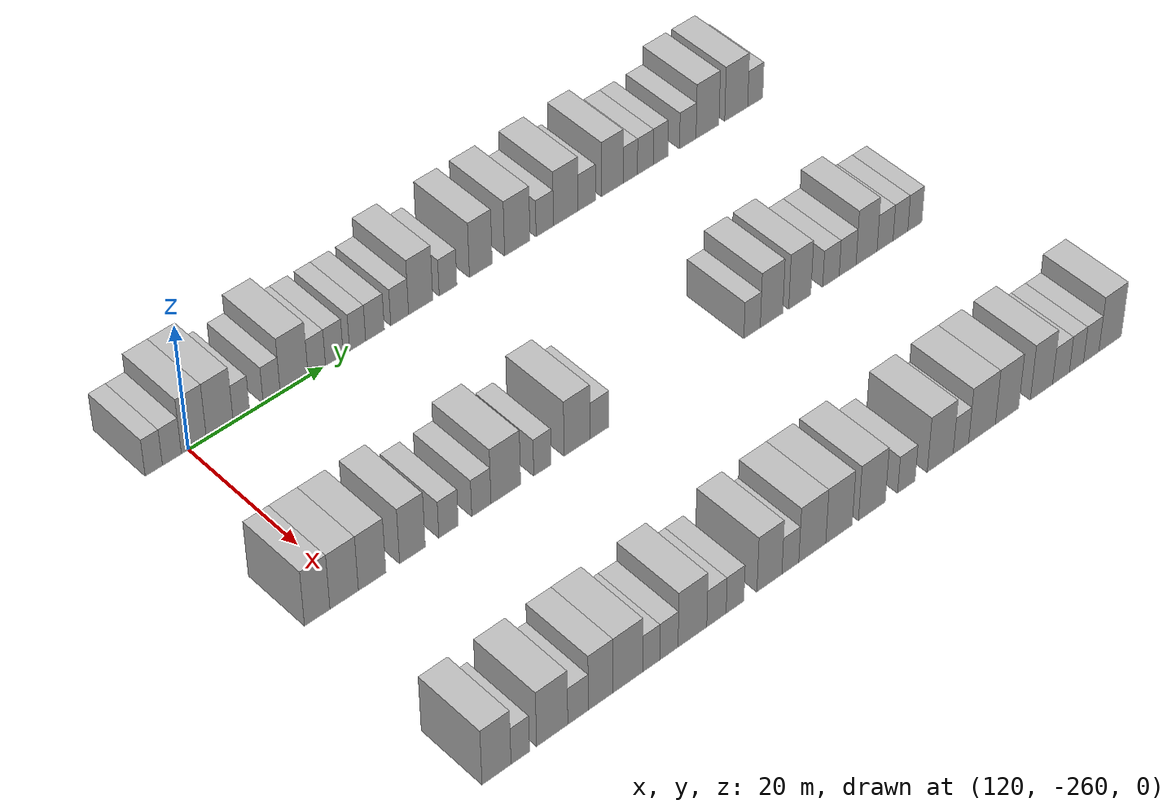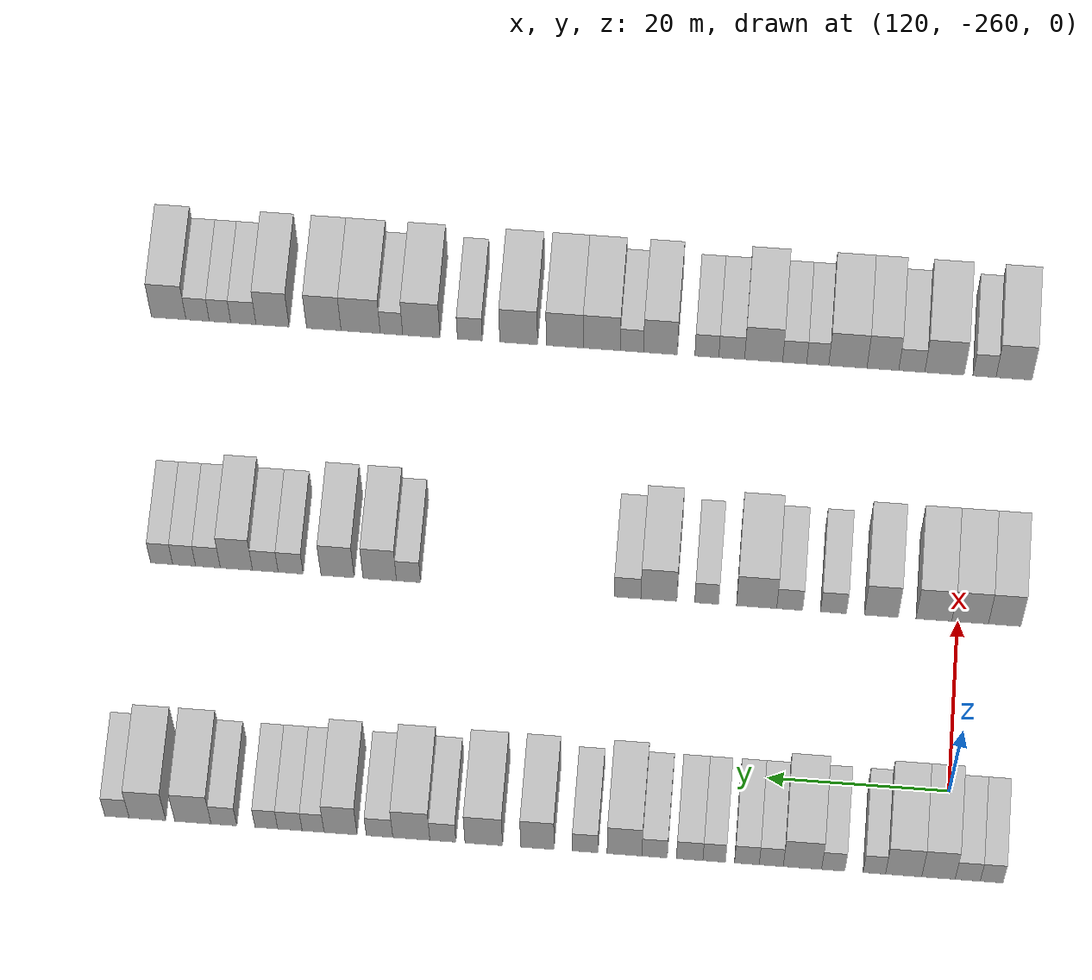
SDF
<sdf version="1.6">
 <world name="default">
  <model name="building_751">
   <static>1</static>
   <pose>115.0000 -265.0925 0 0.000000 0.000000 0.000000</pose>
   <link name="link">
    <pose>0 0 3.00 0 0 0</pose>
    <collision name="collision"><geometry><box><size>10.0000 2.4877 6.0000</size></box></geometry></collision>
    <visual name="visual">
     <cast_shadows>0</cast_shadows>
     <geometry><box><size>10.0000 2.4877 6.0000</size></box></geometry>
     <material>
      <script>
       <uri>model://HANNAS_wall/materials/scripts</uri>
       <uri>model://HANNAS_wall/materials/textures</uri>
       <name>vrc/HANNAS_wall</name>
      </script>
     </material>
    </visual>
   </link>
  </model>
  <model name="building_752">
   <static>1</static>
   <pose>115.0000 -262.4783 0 0.000000 0.000000 0.000000</pose>
   <link name="link">
    <pose>0 0 3.00 0 0 0</pose>
    <collision name="collision"><geometry><box><size>10.0000 2.7408 6.0000</size></box></geometry></collision>
    <visual name="visual">
     <cast_shadows>0</cast_shadows>
     <geometry><box><size>10.0000 2.7408 6.0000</size></box></geometry>
     <material>
      <script>
       <uri>model://HANNAS_wall/materials/scripts</uri>
       <uri>model://HANNAS_wall/materials/textures</uri>
       <name>vrc/HANNAS_wall</name>
      </script>
     </material>
    </visual>
   </link>
  </model>
  <model name="building_753">
   <static>1</static>
   <pose>115.0000 -259.2840 0 0.000000 0.000000 0.000000</pose>
   <link name="link">
    <pose>0 0 4.50 0 0 0</pose>
    <collision name="collision"><geometry><box><size>10.0000 3.6479 9.0000</size></box></geometry></collision>
    <visual name="visual">
     <cast_shadows>0</cast_shadows>
     <geometry><box><size>10.0000 3.6479 9.0000</size></box></geometry>
     <material>
      <script>
       <uri>model://HANNAS_wall/materials/scripts</uri>
       <uri>model://HANNAS_wall/materials/textures</uri>
       <name>vrc/HANNAS_wall</name>
      </script>
     </material>
    </visual>
   </link>
  </model>
  <model name="building_754">
   <static>1</static>
   <pose>115.0000 -255.4858 0 0.000000 0.000000 0.000000</pose>
   <link name="link">
    <pose>0 0 4.50 0 0 0</pose>
    <collision name="collision"><geometry><box><size>10.0000 3.9485 9.0000</size></box></geometry></collision>
    <visual name="visual">
     <cast_shadows>0</cast_shadows>
     <geometry><box><size>10.0000 3.9485 9.0000</size></box></geometry>
     <material>
      <script>
       <uri>model://HANNAS_wall/materials/scripts</uri>
       <uri>model://HANNAS_wall/materials/textures</uri>
       <name>vrc/HANNAS_wall</name>
      </script>
     </material>
    </visual>
   </link>
  </model>
  <model name="building_755">
   <static>1</static>
   <pose>115.0000 -252.2904 0 0.000000 0.000000 0.000000</pose>
   <link name="link">
    <pose>0 0 3.00 0 0 0</pose>
    <collision name="collision"><geometry><box><size>10.0000 2.4423 6.0000</size></box></geometry></collision>
    <visual name="visual">
     <cast_shadows>0</cast_shadows>
     <geometry><box><size>10.0000 2.4423 6.0000</size></box></geometry>
     <material>
      <script>
       <uri>model://HANNAS_wall/materials/scripts</uri>
       <uri>model://HANNAS_wall/materials/textures</uri>
       <name>vrc/HANNAS_wall</name>
      </script>
     </material>
    </visual>
   </link>
  </model>
  <model name="building_756">
   <static>1</static>
   <pose>115.0000 -247.7996 0 0.000000 0.000000 0.000000</pose>
   <link name="link">
    <pose>0 0 3.00 0 0 0</pose>
    <collision name="collision"><geometry><box><size>10.0000 2.5394 6.0000</size></box></geometry></collision>
    <visual name="visual">
     <cast_shadows>0</cast_shadows>
     <geometry><box><size>10.0000 2.5394 6.0000</size></box></geometry>
     <material>
      <script>
       <uri>model://HANNAS_wall/materials/scripts</uri>
       <uri>model://HANNAS_wall/materials/textures</uri>
       <name>vrc/HANNAS_wall</name>
      </script>
     </material>
    </visual>
   </link>
  </model>
  <model name="building_757">
   <static>1</static>
   <pose>115.0000 -244.4322 0 0.000000 0.000000 0.000000</pose>
   <link name="link">
    <pose>0 0 4.50 0 0 0</pose>
    <collision name="collision"><geometry><box><size>10.0000 4.1954 9.0000</size></box></geometry></collision>
    <visual name="visual">
     <cast_shadows>0</cast_shadows>
     <geometry><box><size>10.0000 4.1954 9.0000</size></box></geometry>
     <material>
      <script>
       <uri>model://HANNAS_wall/materials/scripts</uri>
       <uri>model://HANNAS_wall/materials/textures</uri>
       <name>vrc/HANNAS_wall</name>
      </script>
     </material>
    </visual>
   </link>
  </model>
  <model name="building_758">
   <static>1</static>
   <pose>115.0000 -241.0182 0 0.000000 0.000000 0.000000</pose>
   <link name="link">
    <pose>0 0 3.00 0 0 0</pose>
    <collision name="collision"><geometry><box><size>10.0000 2.6326 6.0000</size></box></geometry></collision>
    <visual name="visual">
     <cast_shadows>0</cast_shadows>
     <geometry><box><size>10.0000 2.6326 6.0000</size></box></geometry>
     <material>
      <script>
       <uri>model://HANNAS_wall/materials/scripts</uri>
       <uri>model://HANNAS_wall/materials/textures</uri>
       <name>vrc/HANNAS_wall</name>
      </script>
     </material>
    </visual>
   </link>
  </model>
  <model name="building_759">
   <static>1</static>
   <pose>115.0000 -238.3573 0 0.000000 0.000000 0.000000</pose>
   <link name="link">
    <pose>0 0 3.00 0 0 0</pose>
    <collision name="collision"><geometry><box><size>10.0000 2.6891 6.0000</size></box></geometry></collision>
    <visual name="visual">
     <cast_shadows>0</cast_shadows>
     <geometry><box><size>10.0000 2.6891 6.0000</size></box></geometry>
     <material>
      <script>
       <uri>model://HANNAS_wall/materials/scripts</uri>
       <uri>model://HANNAS_wall/materials/textures</uri>
       <name>vrc/HANNAS_wall</name>
      </script>
     </material>
    </visual>
   </link>
  </model>
  <model name="building_760">
   <static>1</static>
   <pose>115.0000 -234.7789 0 0.000000 0.000000 0.000000</pose>
   <link name="link">
    <pose>0 0 3.00 0 0 0</pose>
    <collision name="collision"><geometry><box><size>10.0000 2.4678 6.0000</size></box></geometry></collision>
    <visual name="visual">
     <cast_shadows>0</cast_shadows>
     <geometry><box><size>10.0000 2.4678 6.0000</size></box></geometry>
     <material>
      <script>
       <uri>model://HANNAS_wall/materials/scripts</uri>
       <uri>model://HANNAS_wall/materials/textures</uri>
       <name>vrc/HANNAS_wall</name>
      </script>
     </material>
    </visual>
   </link>
  </model>
  <model name="building_761">
   <static>1</static>
   <pose>115.0000 -232.0981 0 0.000000 0.000000 0.000000</pose>
   <link name="link">
    <pose>0 0 3.00 0 0 0</pose>
    <collision name="collision"><geometry><box><size>10.0000 2.8937 6.0000</size></box></geometry></collision>
    <visual name="visual">
     <cast_shadows>0</cast_shadows>
     <geometry><box><size>10.0000 2.8937 6.0000</size></box></geometry>
     <material>
      <script>
       <uri>model://HANNAS_wall/materials/scripts</uri>
       <uri>model://HANNAS_wall/materials/textures</uri>
       <name>vrc/HANNAS_wall</name>
      </script>
     </material>
    </visual>
   </link>
  </model>
  <model name="building_762">
   <static>1</static>
   <pose>115.0000 -228.2620 0 0.000000 0.000000 0.000000</pose>
   <link name="link">
    <pose>0 0 3.00 0 0 0</pose>
    <collision name="collision"><geometry><box><size>10.0000 2.7785 6.0000</size></box></geometry></collision>
    <visual name="visual">
     <cast_shadows>0</cast_shadows>
     <geometry><box><size>10.0000 2.7785 6.0000</size></box></geometry>
     <material>
      <script>
       <uri>model://HANNAS_wall/materials/scripts</uri>
       <uri>model://HANNAS_wall/materials/textures</uri>
       <name>vrc/HANNAS_wall</name>
      </script>
     </material>
    </visual>
   </link>
  </model>
  <model name="building_763">
   <static>1</static>
   <pose>115.0000 -224.9666 0 0.000000 0.000000 0.000000</pose>
   <link name="link">
    <pose>0 0 4.50 0 0 0</pose>
    <collision name="collision"><geometry><box><size>10.0000 3.8124 9.0000</size></box></geometry></collision>
    <visual name="visual">
     <cast_shadows>0</cast_shadows>
     <geometry><box><size>10.0000 3.8124 9.0000</size></box></geometry>
     <material>
      <script>
       <uri>model://HANNAS_wall/materials/scripts</uri>
       <uri>model://HANNAS_wall/materials/textures</uri>
       <name>vrc/HANNAS_wall</name>
      </script>
     </material>
    </visual>
   </link>
  </model>
  <model name="building_764">
   <static>1</static>
   <pose>115.0000 -220.6550 0 0.000000 0.000000 0.000000</pose>
   <link name="link">
    <pose>0 0 3.00 0 0 0</pose>
    <collision name="collision"><geometry><box><size>10.0000 2.8106 6.0000</size></box></geometry></collision>
    <visual name="visual">
     <cast_shadows>0</cast_shadows>
     <geometry><box><size>10.0000 2.8106 6.0000</size></box></geometry>
     <material>
      <script>
       <uri>model://HANNAS_wall/materials/scripts</uri>
       <uri>model://HANNAS_wall/materials/textures</uri>
       <name>vrc/HANNAS_wall</name>
      </script>
     </material>
    </visual>
   </link>
  </model>
  <model name="building_765">
   <static>1</static>
   <pose>115.0000 -215.4222 0 0.000000 0.000000 0.000000</pose>
   <link name="link">
    <pose>0 0 4.50 0 0 0</pose>
    <collision name="collision"><geometry><box><size>10.0000 3.6551 9.0000</size></box></geometry></collision>
    <visual name="visual">
     <cast_shadows>0</cast_shadows>
     <geometry><box><size>10.0000 3.6551 9.0000</size></box></geometry>
     <material>
      <script>
       <uri>model://HANNAS_wall/materials/scripts</uri>
       <uri>model://HANNAS_wall/materials/textures</uri>
       <name>vrc/HANNAS_wall</name>
      </script>
     </material>
    </visual>
   </link>
  </model>
  <model name="building_766">
   <static>1</static>
   <pose>115.0000 -209.5350 0 0.000000 0.000000 0.000000</pose>
   <link name="link">
    <pose>0 0 4.50 0 0 0</pose>
    <collision name="collision"><geometry><box><size>10.0000 4.1194 9.0000</size></box></geometry></collision>
    <visual name="visual">
     <cast_shadows>0</cast_shadows>
     <geometry><box><size>10.0000 4.1194 9.0000</size></box></geometry>
     <material>
      <script>
       <uri>model://HANNAS_wall/materials/scripts</uri>
       <uri>model://HANNAS_wall/materials/textures</uri>
       <name>vrc/HANNAS_wall</name>
      </script>
     </material>
    </visual>
   </link>
  </model>
  <model name="building_767">
   <static>1</static>
   <pose>115.0000 -205.0474 0 0.000000 0.000000 0.000000</pose>
   <link name="link">
    <pose>0 0 3.00 0 0 0</pose>
    <collision name="collision"><geometry><box><size>10.0000 2.8558 6.0000</size></box></geometry></collision>
    <visual name="visual">
     <cast_shadows>0</cast_shadows>
     <geometry><box><size>10.0000 2.8558 6.0000</size></box></geometry>
     <material>
      <script>
       <uri>model://HANNAS_wall/materials/scripts</uri>
       <uri>model://HANNAS_wall/materials/textures</uri>
       <name>vrc/HANNAS_wall</name>
      </script>
     </material>
    </visual>
   </link>
  </model>
  <model name="building_768">
   <static>1</static>
   <pose>115.0000 -201.5834 0 0.000000 0.000000 0.000000</pose>
   <link name="link">
    <pose>0 0 4.50 0 0 0</pose>
    <collision name="collision"><geometry><box><size>10.0000 4.0722 9.0000</size></box></geometry></collision>
    <visual name="visual">
     <cast_shadows>0</cast_shadows>
     <geometry><box><size>10.0000 4.0722 9.0000</size></box></geometry>
     <material>
      <script>
       <uri>model://HANNAS_wall/materials/scripts</uri>
       <uri>model://HANNAS_wall/materials/textures</uri>
       <name>vrc/HANNAS_wall</name>
      </script>
     </material>
    </visual>
   </link>
  </model>
  <model name="building_769">
   <static>1</static>
   <pose>115.0000 -198.0937 0 0.000000 0.000000 0.000000</pose>
   <link name="link">
    <pose>0 0 3.00 0 0 0</pose>
    <collision name="collision"><geometry><box><size>10.0000 2.9072 6.0000</size></box></geometry></collision>
    <visual name="visual">
     <cast_shadows>0</cast_shadows>
     <geometry><box><size>10.0000 2.9072 6.0000</size></box></geometry>
     <material>
      <script>
       <uri>model://HANNAS_wall/materials/scripts</uri>
       <uri>model://HANNAS_wall/materials/textures</uri>
       <name>vrc/HANNAS_wall</name>
      </script>
     </material>
    </visual>
   </link>
  </model>
  <model name="building_770">
   <static>1</static>
   <pose>115.0000 -193.8245 0 0.000000 0.000000 0.000000</pose>
   <link name="link">
    <pose>0 0 4.50 0 0 0</pose>
    <collision name="collision"><geometry><box><size>10.0000 3.6312 9.0000</size></box></geometry></collision>
    <visual name="visual">
     <cast_shadows>0</cast_shadows>
     <geometry><box><size>10.0000 3.6312 9.0000</size></box></geometry>
     <material>
      <script>
       <uri>model://HANNAS_wall/materials/scripts</uri>
       <uri>model://HANNAS_wall/materials/textures</uri>
       <name>vrc/HANNAS_wall</name>
      </script>
     </material>
    </visual>
   </link>
  </model>
  <model name="building_771">
   <static>1</static>
   <pose>115.0000 -190.7989 0 0.000000 0.000000 0.000000</pose>
   <link name="link">
    <pose>0 0 3.00 0 0 0</pose>
    <collision name="collision"><geometry><box><size>10.0000 2.4200 6.0000</size></box></geometry></collision>
    <visual name="visual">
     <cast_shadows>0</cast_shadows>
     <geometry><box><size>10.0000 2.4200 6.0000</size></box></geometry>
     <material>
      <script>
       <uri>model://HANNAS_wall/materials/scripts</uri>
       <uri>model://HANNAS_wall/materials/textures</uri>
       <name>vrc/HANNAS_wall</name>
      </script>
     </material>
    </visual>
   </link>
  </model>
  <model name="building_772">
   <static>1</static>
   <pose>115.0000 -188.2445 0 0.000000 0.000000 0.000000</pose>
   <link name="link">
    <pose>0 0 3.00 0 0 0</pose>
    <collision name="collision"><geometry><box><size>10.0000 2.6889 6.0000</size></box></geometry></collision>
    <visual name="visual">
     <cast_shadows>0</cast_shadows>
     <geometry><box><size>10.0000 2.6889 6.0000</size></box></geometry>
     <material>
      <script>
       <uri>model://HANNAS_wall/materials/scripts</uri>
       <uri>model://HANNAS_wall/materials/textures</uri>
       <name>vrc/HANNAS_wall</name>
      </script>
     </material>
    </visual>
   </link>
  </model>
  <model name="building_773">
   <static>1</static>
   <pose>115.0000 -185.6525 0 0.000000 0.000000 0.000000</pose>
   <link name="link">
    <pose>0 0 3.00 0 0 0</pose>
    <collision name="collision"><geometry><box><size>10.0000 2.4951 6.0000</size></box></geometry></collision>
    <visual name="visual">
     <cast_shadows>0</cast_shadows>
     <geometry><box><size>10.0000 2.4951 6.0000</size></box></geometry>
     <material>
      <script>
       <uri>model://HANNAS_wall/materials/scripts</uri>
       <uri>model://HANNAS_wall/materials/textures</uri>
       <name>vrc/HANNAS_wall</name>
      </script>
     </material>
    </visual>
   </link>
  </model>
  <model name="building_774">
   <static>1</static>
   <pose>115.0000 -180.9856 0 0.000000 0.000000 0.000000</pose>
   <link name="link">
    <pose>0 0 3.00 0 0 0</pose>
    <collision name="collision"><geometry><box><size>10.0000 2.8387 6.0000</size></box></geometry></collision>
    <visual name="visual">
     <cast_shadows>0</cast_shadows>
     <geometry><box><size>10.0000 2.8387 6.0000</size></box></geometry>
     <material>
      <script>
       <uri>model://HANNAS_wall/materials/scripts</uri>
       <uri>model://HANNAS_wall/materials/textures</uri>
       <name>vrc/HANNAS_wall</name>
      </script>
     </material>
    </visual>
   </link>
  </model>
  <model name="building_775">
   <static>1</static>
   <pose>115.0000 -177.5719 0 0.000000 0.000000 0.000000</pose>
   <link name="link">
    <pose>0 0 4.50 0 0 0</pose>
    <collision name="collision"><geometry><box><size>10.0000 3.9886 9.0000</size></box></geometry></collision>
    <visual name="visual">
     <cast_shadows>0</cast_shadows>
     <geometry><box><size>10.0000 3.9886 9.0000</size></box></geometry>
     <material>
      <script>
       <uri>model://HANNAS_wall/materials/scripts</uri>
       <uri>model://HANNAS_wall/materials/textures</uri>
       <name>vrc/HANNAS_wall</name>
      </script>
     </material>
    </visual>
   </link>
  </model>
  <model name="building_776">
   <static>1</static>
   <pose>115.0000 -172.5607 0 0.000000 0.000000 0.000000</pose>
   <link name="link">
    <pose>0 0 4.50 0 0 0</pose>
    <collision name="collision"><geometry><box><size>10.0000 4.0339 9.0000</size></box></geometry></collision>
    <visual name="visual">
     <cast_shadows>0</cast_shadows>
     <geometry><box><size>10.0000 4.0339 9.0000</size></box></geometry>
     <material>
      <script>
       <uri>model://HANNAS_wall/materials/scripts</uri>
       <uri>model://HANNAS_wall/materials/textures</uri>
       <name>vrc/HANNAS_wall</name>
      </script>
     </material>
    </visual>
   </link>
  </model>
  <model name="building_777">
   <static>1</static>
   <pose>115.0000 -169.2082 0 0.000000 0.000000 0.000000</pose>
   <link name="link">
    <pose>0 0 3.00 0 0 0</pose>
    <collision name="collision"><geometry><box><size>10.0000 2.6710 6.0000</size></box></geometry></collision>
    <visual name="visual">
     <cast_shadows>0</cast_shadows>
     <geometry><box><size>10.0000 2.6710 6.0000</size></box></geometry>
     <material>
      <script>
       <uri>model://HANNAS_wall/materials/scripts</uri>
       <uri>model://HANNAS_wall/materials/textures</uri>
       <name>vrc/HANNAS_wall</name>
      </script>
     </material>
    </visual>
   </link>
  </model>
  <model name="building_960">
   <static>1</static>
   <pose>145.0000 -265.1913 0 0.000000 0.000000 0.000000</pose>
   <link name="link">
    <pose>0 0 4.50 0 0 0</pose>
    <collision name="collision"><geometry><box><size>10.0000 3.6235 9.0000</size></box></geometry></collision>
    <visual name="visual">
     <cast_shadows>0</cast_shadows>
     <geometry><box><size>10.0000 3.6235 9.0000</size></box></geometry>
     <material>
      <script>
       <uri>model://HANNAS_wall/materials/scripts</uri>
       <uri>model://HANNAS_wall/materials/textures</uri>
       <name>vrc/HANNAS_wall</name>
      </script>
     </material>
    </visual>
   </link>
  </model>
  <model name="building_961">
   <static>1</static>
   <pose>145.0000 -261.3383 0 0.000000 0.000000 0.000000</pose>
   <link name="link">
    <pose>0 0 4.50 0 0 0</pose>
    <collision name="collision"><geometry><box><size>10.0000 4.0824 9.0000</size></box></geometry></collision>
    <visual name="visual">
     <cast_shadows>0</cast_shadows>
     <geometry><box><size>10.0000 4.0824 9.0000</size></box></geometry>
     <material>
      <script>
       <uri>model://HANNAS_wall/materials/scripts</uri>
       <uri>model://HANNAS_wall/materials/textures</uri>
       <name>vrc/HANNAS_wall</name>
      </script>
     </material>
    </visual>
   </link>
  </model>
  <model name="building_962">
   <static>1</static>
   <pose>145.0000 -257.3020 0 0.000000 0.000000 0.000000</pose>
   <link name="link">
    <pose>0 0 4.50 0 0 0</pose>
    <collision name="collision"><geometry><box><size>10.0000 3.9902 9.0000</size></box></geometry></collision>
    <visual name="visual">
     <cast_shadows>0</cast_shadows>
     <geometry><box><size>10.0000 3.9902 9.0000</size></box></geometry>
     <material>
      <script>
       <uri>model://HANNAS_wall/materials/scripts</uri>
       <uri>model://HANNAS_wall/materials/textures</uri>
       <name>vrc/HANNAS_wall</name>
      </script>
     </material>
    </visual>
   </link>
  </model>
  <model name="building_963">
   <static>1</static>
   <pose>145.0000 -251.4251 0 0.000000 0.000000 0.000000</pose>
   <link name="link">
    <pose>0 0 4.50 0 0 0</pose>
    <collision name="collision"><geometry><box><size>10.0000 3.7635 9.0000</size></box></geometry></collision>
    <visual name="visual">
     <cast_shadows>0</cast_shadows>
     <geometry><box><size>10.0000 3.7635 9.0000</size></box></geometry>
     <material>
      <script>
       <uri>model://HANNAS_wall/materials/scripts</uri>
       <uri>model://HANNAS_wall/materials/textures</uri>
       <name>vrc/HANNAS_wall</name>
      </script>
     </material>
    </visual>
   </link>
  </model>
  <model name="building_964">
   <static>1</static>
   <pose>145.0000 -246.0928 0 0.000000 0.000000 0.000000</pose>
   <link name="link">
    <pose>0 0 3.00 0 0 0</pose>
    <collision name="collision"><geometry><box><size>10.0000 2.9011 6.0000</size></box></geometry></collision>
    <visual name="visual">
     <cast_shadows>0</cast_shadows>
     <geometry><box><size>10.0000 2.9011 6.0000</size></box></geometry>
     <material>
      <script>
       <uri>model://HANNAS_wall/materials/scripts</uri>
       <uri>model://HANNAS_wall/materials/textures</uri>
       <name>vrc/HANNAS_wall</name>
      </script>
     </material>
    </visual>
   </link>
  </model>
  <model name="building_965">
   <static>1</static>
   <pose>145.0000 -241.1931 0 0.000000 0.000000 0.000000</pose>
   <link name="link">
    <pose>0 0 3.00 0 0 0</pose>
    <collision name="collision"><geometry><box><size>10.0000 2.8984 6.0000</size></box></geometry></collision>
    <visual name="visual">
     <cast_shadows>0</cast_shadows>
     <geometry><box><size>10.0000 2.8984 6.0000</size></box></geometry>
     <material>
      <script>
       <uri>model://HANNAS_wall/materials/scripts</uri>
       <uri>model://HANNAS_wall/materials/textures</uri>
       <name>vrc/HANNAS_wall</name>
      </script>
     </material>
    </visual>
   </link>
  </model>
  <model name="building_966">
   <static>1</static>
   <pose>145.0000 -237.5005 0 0.000000 0.000000 0.000000</pose>
   <link name="link">
    <pose>0 0 4.50 0 0 0</pose>
    <collision name="collision"><geometry><box><size>10.0000 4.4868 9.0000</size></box></geometry></collision>
    <visual name="visual">
     <cast_shadows>0</cast_shadows>
     <geometry><box><size>10.0000 4.4868 9.0000</size></box></geometry>
     <material>
      <script>
       <uri>model://HANNAS_wall/materials/scripts</uri>
       <uri>model://HANNAS_wall/materials/textures</uri>
       <name>vrc/HANNAS_wall</name>
      </script>
     </material>
    </visual>
   </link>
  </model>
  <model name="building_967">
   <static>1</static>
   <pose>145.0000 -231.9222 0 0.000000 0.000000 0.000000</pose>
   <link name="link">
    <pose>0 0 3.00 0 0 0</pose>
    <collision name="collision"><geometry><box><size>10.0000 2.6698 6.0000</size></box></geometry></collision>
    <visual name="visual">
     <cast_shadows>0</cast_shadows>
     <geometry><box><size>10.0000 2.6698 6.0000</size></box></geometry>
     <material>
      <script>
       <uri>model://HANNAS_wall/materials/scripts</uri>
       <uri>model://HANNAS_wall/materials/textures</uri>
       <name>vrc/HANNAS_wall</name>
      </script>
     </material>
    </visual>
   </link>
  </model>
  <model name="building_968">
   <static>1</static>
   <pose>145.0000 -226.5793 0 0.000000 0.000000 0.000000</pose>
   <link name="link">
    <pose>0 0 4.50 0 0 0</pose>
    <collision name="collision"><geometry><box><size>10.0000 4.0162 9.0000</size></box></geometry></collision>
    <visual name="visual">
     <cast_shadows>0</cast_shadows>
     <geometry><box><size>10.0000 4.0162 9.0000</size></box></geometry>
     <material>
      <script>
       <uri>model://HANNAS_wall/materials/scripts</uri>
       <uri>model://HANNAS_wall/materials/textures</uri>
       <name>vrc/HANNAS_wall</name>
      </script>
     </material>
    </visual>
   </link>
  </model>
  <model name="building_969">
   <static>1</static>
   <pose>145.0000 -223.0778 0 0.000000 0.000000 0.000000</pose>
   <link name="link">
    <pose>0 0 3.00 0 0 0</pose>
    <collision name="collision"><geometry><box><size>10.0000 2.9867 6.0000</size></box></geometry></collision>
    <visual name="visual">
     <cast_shadows>0</cast_shadows>
     <geometry><box><size>10.0000 2.9867 6.0000</size></box></geometry>
     <material>
      <script>
       <uri>model://HANNAS_wall/materials/scripts</uri>
       <uri>model://HANNAS_wall/materials/textures</uri>
       <name>vrc/HANNAS_wall</name>
      </script>
     </material>
    </visual>
   </link>
  </model>
  <model name="building_970">
   <static>1</static>
   <pose>145.0000 -198.5200 0 0.000000 0.000000 0.000000</pose>
   <link name="link">
    <pose>0 0 3.00 0 0 0</pose>
    <collision name="collision"><geometry><box><size>10.0000 2.7097 6.0000</size></box></geometry></collision>
    <visual name="visual">
     <cast_shadows>0</cast_shadows>
     <geometry><box><size>10.0000 2.7097 6.0000</size></box></geometry>
     <material>
      <script>
       <uri>model://HANNAS_wall/materials/scripts</uri>
       <uri>model://HANNAS_wall/materials/textures</uri>
       <name>vrc/HANNAS_wall</name>
      </script>
     </material>
    </visual>
   </link>
  </model>
  <model name="building_971">
   <static>1</static>
   <pose>145.0000 -195.2936 0 0.000000 0.000000 0.000000</pose>
   <link name="link">
    <pose>0 0 4.50 0 0 0</pose>
    <collision name="collision"><geometry><box><size>10.0000 3.7431 9.0000</size></box></geometry></collision>
    <visual name="visual">
     <cast_shadows>0</cast_shadows>
     <geometry><box><size>10.0000 3.7431 9.0000</size></box></geometry>
     <material>
      <script>
       <uri>model://HANNAS_wall/materials/scripts</uri>
       <uri>model://HANNAS_wall/materials/textures</uri>
       <name>vrc/HANNAS_wall</name>
      </script>
     </material>
    </visual>
   </link>
  </model>
  <model name="building_972">
   <static>1</static>
   <pose>145.0000 -190.5574 0 0.000000 0.000000 0.000000</pose>
   <link name="link">
    <pose>0 0 4.50 0 0 0</pose>
    <collision name="collision"><geometry><box><size>10.0000 3.7293 9.0000</size></box></geometry></collision>
    <visual name="visual">
     <cast_shadows>0</cast_shadows>
     <geometry><box><size>10.0000 3.7293 9.0000</size></box></geometry>
     <material>
      <script>
       <uri>model://HANNAS_wall/materials/scripts</uri>
       <uri>model://HANNAS_wall/materials/textures</uri>
       <name>vrc/HANNAS_wall</name>
      </script>
     </material>
    </visual>
   </link>
  </model>
  <model name="building_973">
   <static>1</static>
   <pose>145.0000 -185.2841 0 0.000000 0.000000 0.000000</pose>
   <link name="link">
    <pose>0 0 3.00 0 0 0</pose>
    <collision name="collision"><geometry><box><size>10.0000 2.8173 6.0000</size></box></geometry></collision>
    <visual name="visual">
     <cast_shadows>0</cast_shadows>
     <geometry><box><size>10.0000 2.8173 6.0000</size></box></geometry>
     <material>
      <script>
       <uri>model://HANNAS_wall/materials/scripts</uri>
       <uri>model://HANNAS_wall/materials/textures</uri>
       <name>vrc/HANNAS_wall</name>
      </script>
     </material>
    </visual>
   </link>
  </model>
  <model name="building_974">
   <static>1</static>
   <pose>145.0000 -182.4339 0 0.000000 0.000000 0.000000</pose>
   <link name="link">
    <pose>0 0 3.00 0 0 0</pose>
    <collision name="collision"><geometry><box><size>10.0000 2.8831 6.0000</size></box></geometry></collision>
    <visual name="visual">
     <cast_shadows>0</cast_shadows>
     <geometry><box><size>10.0000 2.8831 6.0000</size></box></geometry>
     <material>
      <script>
       <uri>model://HANNAS_wall/materials/scripts</uri>
       <uri>model://HANNAS_wall/materials/textures</uri>
       <name>vrc/HANNAS_wall</name>
      </script>
     </material>
    </visual>
   </link>
  </model>
  <model name="building_975">
   <static>1</static>
   <pose>145.0000 -179.1799 0 0.000000 0.000000 0.000000</pose>
   <link name="link">
    <pose>0 0 4.50 0 0 0</pose>
    <collision name="collision"><geometry><box><size>10.0000 3.6250 9.0000</size></box></geometry></collision>
    <visual name="visual">
     <cast_shadows>0</cast_shadows>
     <geometry><box><size>10.0000 3.6250 9.0000</size></box></geometry>
     <material>
      <script>
       <uri>model://HANNAS_wall/materials/scripts</uri>
       <uri>model://HANNAS_wall/materials/textures</uri>
       <name>vrc/HANNAS_wall</name>
      </script>
     </material>
    </visual>
   </link>
  </model>
  <model name="building_976">
   <static>1</static>
   <pose>145.0000 -175.9802 0 0.000000 0.000000 0.000000</pose>
   <link name="link">
    <pose>0 0 3.00 0 0 0</pose>
    <collision name="collision"><geometry><box><size>10.0000 2.7744 6.0000</size></box></geometry></collision>
    <visual name="visual">
     <cast_shadows>0</cast_shadows>
     <geometry><box><size>10.0000 2.7744 6.0000</size></box></geometry>
     <material>
      <script>
       <uri>model://HANNAS_wall/materials/scripts</uri>
       <uri>model://HANNAS_wall/materials/textures</uri>
       <name>vrc/HANNAS_wall</name>
      </script>
     </material>
    </visual>
   </link>
  </model>
  <model name="building_977">
   <static>1</static>
   <pose>145.0000 -173.3022 0 0.000000 0.000000 0.000000</pose>
   <link name="link">
    <pose>0 0 3.00 0 0 0</pose>
    <collision name="collision"><geometry><box><size>10.0000 2.5815 6.0000</size></box></geometry></collision>
    <visual name="visual">
     <cast_shadows>0</cast_shadows>
     <geometry><box><size>10.0000 2.5815 6.0000</size></box></geometry>
     <material>
      <script>
       <uri>model://HANNAS_wall/materials/scripts</uri>
       <uri>model://HANNAS_wall/materials/textures</uri>
       <name>vrc/HANNAS_wall</name>
      </script>
     </material>
    </visual>
   </link>
  </model>
  <model name="building_978">
   <static>1</static>
   <pose>145.0000 -170.7740 0 0.000000 0.000000 0.000000</pose>
   <link name="link">
    <pose>0 0 3.00 0 0 0</pose>
    <collision name="collision"><geometry><box><size>10.0000 2.4749 6.0000</size></box></geometry></collision>
    <visual name="visual">
     <cast_shadows>0</cast_shadows>
     <geometry><box><size>10.0000 2.4749 6.0000</size></box></geometry>
     <material>
      <script>
       <uri>model://HANNAS_wall/materials/scripts</uri>
       <uri>model://HANNAS_wall/materials/textures</uri>
       <name>vrc/HANNAS_wall</name>
      </script>
     </material>
    </visual>
   </link>
  </model>
  <model name="building_1191">
   <static>1</static>
   <pose>175.0000 -264.9295 0 0.000000 0.000000 0.000000</pose>
   <link name="link">
    <pose>0 0 4.50 0 0 0</pose>
    <collision name="collision"><geometry><box><size>10.0000 4.0952 9.0000</size></box></geometry></collision>
    <visual name="visual">
     <cast_shadows>0</cast_shadows>
     <geometry><box><size>10.0000 4.0952 9.0000</size></box></geometry>
     <material>
      <script>
       <uri>model://HANNAS_wall/materials/scripts</uri>
       <uri>model://HANNAS_wall/materials/textures</uri>
       <name>vrc/HANNAS_wall</name>
      </script>
     </material>
    </visual>
   </link>
  </model>
  <model name="building_1192">
   <static>1</static>
   <pose>175.0000 -261.5680 0 0.000000 0.000000 0.000000</pose>
   <link name="link">
    <pose>0 0 3.00 0 0 0</pose>
    <collision name="collision"><geometry><box><size>10.0000 2.6279 6.0000</size></box></geometry></collision>
    <visual name="visual">
     <cast_shadows>0</cast_shadows>
     <geometry><box><size>10.0000 2.6279 6.0000</size></box></geometry>
     <material>
      <script>
       <uri>model://HANNAS_wall/materials/scripts</uri>
       <uri>model://HANNAS_wall/materials/textures</uri>
       <name>vrc/HANNAS_wall</name>
      </script>
     </material>
    </visual>
   </link>
  </model>
  <model name="building_1193">
   <static>1</static>
   <pose>175.0000 -257.0125 0 0.000000 0.000000 0.000000</pose>
   <link name="link">
    <pose>0 0 4.50 0 0 0</pose>
    <collision name="collision"><geometry><box><size>10.0000 4.4831 9.0000</size></box></geometry></collision>
    <visual name="visual">
     <cast_shadows>0</cast_shadows>
     <geometry><box><size>10.0000 4.4831 9.0000</size></box></geometry>
     <material>
      <script>
       <uri>model://HANNAS_wall/materials/scripts</uri>
       <uri>model://HANNAS_wall/materials/textures</uri>
       <name>vrc/HANNAS_wall</name>
      </script>
     </material>
    </visual>
   </link>
  </model>
  <model name="building_1194">
   <static>1</static>
   <pose>175.0000 -253.2860 0 0.000000 0.000000 0.000000</pose>
   <link name="link">
    <pose>0 0 3.00 0 0 0</pose>
    <collision name="collision"><geometry><box><size>10.0000 2.9699 6.0000</size></box></geometry></collision>
    <visual name="visual">
     <cast_shadows>0</cast_shadows>
     <geometry><box><size>10.0000 2.9699 6.0000</size></box></geometry>
     <material>
      <script>
       <uri>model://HANNAS_wall/materials/scripts</uri>
       <uri>model://HANNAS_wall/materials/textures</uri>
       <name>vrc/HANNAS_wall</name>
      </script>
     </material>
    </visual>
   </link>
  </model>
  <model name="building_1195">
   <static>1</static>
   <pose>175.0000 -249.9912 0 0.000000 0.000000 0.000000</pose>
   <link name="link">
    <pose>0 0 4.50 0 0 0</pose>
    <collision name="collision"><geometry><box><size>10.0000 3.6197 9.0000</size></box></geometry></collision>
    <visual name="visual">
     <cast_shadows>0</cast_shadows>
     <geometry><box><size>10.0000 3.6197 9.0000</size></box></geometry>
     <material>
      <script>
       <uri>model://HANNAS_wall/materials/scripts</uri>
       <uri>model://HANNAS_wall/materials/textures</uri>
       <name>vrc/HANNAS_wall</name>
      </script>
     </material>
    </visual>
   </link>
  </model>
  <model name="building_1196">
   <static>1</static>
   <pose>175.0000 -245.9990 0 0.000000 0.000000 0.000000</pose>
   <link name="link">
    <pose>0 0 4.50 0 0 0</pose>
    <collision name="collision"><geometry><box><size>10.0000 4.3647 9.0000</size></box></geometry></collision>
    <visual name="visual">
     <cast_shadows>0</cast_shadows>
     <geometry><box><size>10.0000 4.3647 9.0000</size></box></geometry>
     <material>
      <script>
       <uri>model://HANNAS_wall/materials/scripts</uri>
       <uri>model://HANNAS_wall/materials/textures</uri>
       <name>vrc/HANNAS_wall</name>
      </script>
     </material>
    </visual>
   </link>
  </model>
  <model name="building_1197">
   <static>1</static>
   <pose>175.0000 -242.5560 0 0.000000 0.000000 0.000000</pose>
   <link name="link">
    <pose>0 0 3.00 0 0 0</pose>
    <collision name="collision"><geometry><box><size>10.0000 2.5212 6.0000</size></box></geometry></collision>
    <visual name="visual">
     <cast_shadows>0</cast_shadows>
     <geometry><box><size>10.0000 2.5212 6.0000</size></box></geometry>
     <material>
      <script>
       <uri>model://HANNAS_wall/materials/scripts</uri>
       <uri>model://HANNAS_wall/materials/textures</uri>
       <name>vrc/HANNAS_wall</name>
      </script>
     </material>
    </visual>
   </link>
  </model>
  <model name="building_1198">
   <static>1</static>
   <pose>175.0000 -239.9197 0 0.000000 0.000000 0.000000</pose>
   <link name="link">
    <pose>0 0 3.00 0 0 0</pose>
    <collision name="collision"><geometry><box><size>10.0000 2.7515 6.0000</size></box></geometry></collision>
    <visual name="visual">
     <cast_shadows>0</cast_shadows>
     <geometry><box><size>10.0000 2.7515 6.0000</size></box></geometry>
     <material>
      <script>
       <uri>model://HANNAS_wall/materials/scripts</uri>
       <uri>model://HANNAS_wall/materials/textures</uri>
       <name>vrc/HANNAS_wall</name>
      </script>
     </material>
    </visual>
   </link>
  </model>
  <model name="building_1199">
   <static>1</static>
   <pose>175.0000 -236.3796 0 0.000000 0.000000 0.000000</pose>
   <link name="link">
    <pose>0 0 4.50 0 0 0</pose>
    <collision name="collision"><geometry><box><size>10.0000 4.3287 9.0000</size></box></geometry></collision>
    <visual name="visual">
     <cast_shadows>0</cast_shadows>
     <geometry><box><size>10.0000 4.3287 9.0000</size></box></geometry>
     <material>
      <script>
       <uri>model://HANNAS_wall/materials/scripts</uri>
       <uri>model://HANNAS_wall/materials/textures</uri>
       <name>vrc/HANNAS_wall</name>
      </script>
     </material>
    </visual>
   </link>
  </model>
  <model name="building_1200">
   <static>1</static>
   <pose>175.0000 -232.7432 0 0.000000 0.000000 0.000000</pose>
   <link name="link">
    <pose>0 0 3.00 0 0 0</pose>
    <collision name="collision"><geometry><box><size>10.0000 2.9441 6.0000</size></box></geometry></collision>
    <visual name="visual">
     <cast_shadows>0</cast_shadows>
     <geometry><box><size>10.0000 2.9441 6.0000</size></box></geometry>
     <material>
      <script>
       <uri>model://HANNAS_wall/materials/scripts</uri>
       <uri>model://HANNAS_wall/materials/textures</uri>
       <name>vrc/HANNAS_wall</name>
      </script>
     </material>
    </visual>
   </link>
  </model>
  <model name="building_1201">
   <static>1</static>
   <pose>175.0000 -229.9050 0 0.000000 0.000000 0.000000</pose>
   <link name="link">
    <pose>0 0 3.00 0 0 0</pose>
    <collision name="collision"><geometry><box><size>10.0000 2.7322 6.0000</size></box></geometry></collision>
    <visual name="visual">
     <cast_shadows>0</cast_shadows>
     <geometry><box><size>10.0000 2.7322 6.0000</size></box></geometry>
     <material>
      <script>
       <uri>model://HANNAS_wall/materials/scripts</uri>
       <uri>model://HANNAS_wall/materials/textures</uri>
       <name>vrc/HANNAS_wall</name>
      </script>
     </material>
    </visual>
   </link>
  </model>
  <model name="building_1202">
   <static>1</static>
   <pose>175.0000 -224.6013 0 0.000000 0.000000 0.000000</pose>
   <link name="link">
    <pose>0 0 4.50 0 0 0</pose>
    <collision name="collision"><geometry><box><size>10.0000 3.8754 9.0000</size></box></geometry></collision>
    <visual name="visual">
     <cast_shadows>0</cast_shadows>
     <geometry><box><size>10.0000 3.8754 9.0000</size></box></geometry>
     <material>
      <script>
       <uri>model://HANNAS_wall/materials/scripts</uri>
       <uri>model://HANNAS_wall/materials/textures</uri>
       <name>vrc/HANNAS_wall</name>
      </script>
     </material>
    </visual>
   </link>
  </model>
  <model name="building_1203">
   <static>1</static>
   <pose>175.0000 -221.3412 0 0.000000 0.000000 0.000000</pose>
   <link name="link">
    <pose>0 0 3.00 0 0 0</pose>
    <collision name="collision"><geometry><box><size>10.0000 2.6448 6.0000</size></box></geometry></collision>
    <visual name="visual">
     <cast_shadows>0</cast_shadows>
     <geometry><box><size>10.0000 2.6448 6.0000</size></box></geometry>
     <material>
      <script>
       <uri>model://HANNAS_wall/materials/scripts</uri>
       <uri>model://HANNAS_wall/materials/textures</uri>
       <name>vrc/HANNAS_wall</name>
      </script>
     </material>
    </visual>
   </link>
  </model>
  <model name="building_1204">
   <static>1</static>
   <pose>175.0000 -217.8909 0 0.000000 0.000000 0.000000</pose>
   <link name="link">
    <pose>0 0 4.50 0 0 0</pose>
    <collision name="collision"><geometry><box><size>10.0000 4.2558 9.0000</size></box></geometry></collision>
    <visual name="visual">
     <cast_shadows>0</cast_shadows>
     <geometry><box><size>10.0000 4.2558 9.0000</size></box></geometry>
     <material>
      <script>
       <uri>model://HANNAS_wall/materials/scripts</uri>
       <uri>model://HANNAS_wall/materials/textures</uri>
       <name>vrc/HANNAS_wall</name>
      </script>
     </material>
    </visual>
   </link>
  </model>
  <model name="building_1205">
   <static>1</static>
   <pose>175.0000 -213.6576 0 0.000000 0.000000 0.000000</pose>
   <link name="link">
    <pose>0 0 4.50 0 0 0</pose>
    <collision name="collision"><geometry><box><size>10.0000 4.2109 9.0000</size></box></geometry></collision>
    <visual name="visual">
     <cast_shadows>0</cast_shadows>
     <geometry><box><size>10.0000 4.2109 9.0000</size></box></geometry>
     <material>
      <script>
       <uri>model://HANNAS_wall/materials/scripts</uri>
       <uri>model://HANNAS_wall/materials/textures</uri>
       <name>vrc/HANNAS_wall</name>
      </script>
     </material>
    </visual>
   </link>
  </model>
  <model name="building_1206">
   <static>1</static>
   <pose>175.0000 -208.3902 0 0.000000 0.000000 0.000000</pose>
   <link name="link">
    <pose>0 0 4.50 0 0 0</pose>
    <collision name="collision"><geometry><box><size>10.0000 4.3238 9.0000</size></box></geometry></collision>
    <visual name="visual">
     <cast_shadows>0</cast_shadows>
     <geometry><box><size>10.0000 4.3238 9.0000</size></box></geometry>
     <material>
      <script>
       <uri>model://HANNAS_wall/materials/scripts</uri>
       <uri>model://HANNAS_wall/materials/textures</uri>
       <name>vrc/HANNAS_wall</name>
      </script>
     </material>
    </visual>
   </link>
  </model>
  <model name="building_1207">
   <static>1</static>
   <pose>175.0000 -202.8009 0 0.000000 0.000000 0.000000</pose>
   <link name="link">
    <pose>0 0 3.00 0 0 0</pose>
    <collision name="collision"><geometry><box><size>10.0000 2.8549 6.0000</size></box></geometry></collision>
    <visual name="visual">
     <cast_shadows>0</cast_shadows>
     <geometry><box><size>10.0000 2.8549 6.0000</size></box></geometry>
     <material>
      <script>
       <uri>model://HANNAS_wall/materials/scripts</uri>
       <uri>model://HANNAS_wall/materials/textures</uri>
       <name>vrc/HANNAS_wall</name>
      </script>
     </material>
    </visual>
   </link>
  </model>
  <model name="building_1208">
   <static>1</static>
   <pose>175.0000 -197.2345 0 0.000000 0.000000 0.000000</pose>
   <link name="link">
    <pose>0 0 4.50 0 0 0</pose>
    <collision name="collision"><geometry><box><size>10.0000 4.2779 9.0000</size></box></geometry></collision>
    <visual name="visual">
     <cast_shadows>0</cast_shadows>
     <geometry><box><size>10.0000 4.2779 9.0000</size></box></geometry>
     <material>
      <script>
       <uri>model://HANNAS_wall/materials/scripts</uri>
       <uri>model://HANNAS_wall/materials/textures</uri>
       <name>vrc/HANNAS_wall</name>
      </script>
     </material>
    </visual>
   </link>
  </model>
  <model name="building_1209">
   <static>1</static>
   <pose>175.0000 -193.8071 0 0.000000 0.000000 0.000000</pose>
   <link name="link">
    <pose>0 0 3.00 0 0 0</pose>
    <collision name="collision"><geometry><box><size>10.0000 2.5769 6.0000</size></box></geometry></collision>
    <visual name="visual">
     <cast_shadows>0</cast_shadows>
     <geometry><box><size>10.0000 2.5769 6.0000</size></box></geometry>
     <material>
      <script>
       <uri>model://HANNAS_wall/materials/scripts</uri>
       <uri>model://HANNAS_wall/materials/textures</uri>
       <name>vrc/HANNAS_wall</name>
      </script>
     </material>
    </visual>
   </link>
  </model>
  <model name="building_1210">
   <static>1</static>
   <pose>175.0000 -190.2725 0 0.000000 0.000000 0.000000</pose>
   <link name="link">
    <pose>0 0 4.50 0 0 0</pose>
    <collision name="collision"><geometry><box><size>10.0000 4.4922 9.0000</size></box></geometry></collision>
    <visual name="visual">
     <cast_shadows>0</cast_shadows>
     <geometry><box><size>10.0000 4.4922 9.0000</size></box></geometry>
     <material>
      <script>
       <uri>model://HANNAS_wall/materials/scripts</uri>
       <uri>model://HANNAS_wall/materials/textures</uri>
       <name>vrc/HANNAS_wall</name>
      </script>
     </material>
    </visual>
   </link>
  </model>
  <model name="building_1211">
   <static>1</static>
   <pose>175.0000 -186.0503 0 0.000000 0.000000 0.000000</pose>
   <link name="link">
    <pose>0 0 4.50 0 0 0</pose>
    <collision name="collision"><geometry><box><size>10.0000 3.9522 9.0000</size></box></geometry></collision>
    <visual name="visual">
     <cast_shadows>0</cast_shadows>
     <geometry><box><size>10.0000 3.9522 9.0000</size></box></geometry>
     <material>
      <script>
       <uri>model://HANNAS_wall/materials/scripts</uri>
       <uri>model://HANNAS_wall/materials/textures</uri>
       <name>vrc/HANNAS_wall</name>
      </script>
     </material>
    </visual>
   </link>
  </model>
  <model name="building_1212">
   <static>1</static>
   <pose>175.0000 -180.1675 0 0.000000 0.000000 0.000000</pose>
   <link name="link">
    <pose>0 0 4.50 0 0 0</pose>
    <collision name="collision"><geometry><box><size>10.0000 3.8133 9.0000</size></box></geometry></collision>
    <visual name="visual">
     <cast_shadows>0</cast_shadows>
     <geometry><box><size>10.0000 3.8133 9.0000</size></box></geometry>
     <material>
      <script>
       <uri>model://HANNAS_wall/materials/scripts</uri>
       <uri>model://HANNAS_wall/materials/textures</uri>
       <name>vrc/HANNAS_wall</name>
      </script>
     </material>
    </visual>
   </link>
  </model>
  <model name="building_1213">
   <static>1</static>
   <pose>175.0000 -176.8114 0 0.000000 0.000000 0.000000</pose>
   <link name="link">
    <pose>0 0 3.00 0 0 0</pose>
    <collision name="collision"><geometry><box><size>10.0000 2.8990 6.0000</size></box></geometry></collision>
    <visual name="visual">
     <cast_shadows>0</cast_shadows>
     <geometry><box><size>10.0000 2.8990 6.0000</size></box></geometry>
     <material>
      <script>
       <uri>model://HANNAS_wall/materials/scripts</uri>
       <uri>model://HANNAS_wall/materials/textures</uri>
       <name>vrc/HANNAS_wall</name>
      </script>
     </material>
    </visual>
   </link>
  </model>
  <model name="building_1214">
   <static>1</static>
   <pose>175.0000 -174.1283 0 0.000000 0.000000 0.000000</pose>
   <link name="link">
    <pose>0 0 3.00 0 0 0</pose>
    <collision name="collision"><geometry><box><size>10.0000 2.4671 6.0000</size></box></geometry></collision>
    <visual name="visual">
     <cast_shadows>0</cast_shadows>
     <geometry><box><size>10.0000 2.4671 6.0000</size></box></geometry>
     <material>
      <script>
       <uri>model://HANNAS_wall/materials/scripts</uri>
       <uri>model://HANNAS_wall/materials/textures</uri>
       <name>vrc/HANNAS_wall</name>
      </script>
     </material>
    </visual>
   </link>
  </model>
  <model name="building_1215">
   <static>1</static>
   <pose>175.0000 -171.5527 0 0.000000 0.000000 0.000000</pose>
   <link name="link">
    <pose>0 0 3.00 0 0 0</pose>
    <collision name="collision"><geometry><box><size>10.0000 2.6842 6.0000</size></box></geometry></collision>
    <visual name="visual">
     <cast_shadows>0</cast_shadows>
     <geometry><box><size>10.0000 2.6842 6.0000</size></box></geometry>
     <material>
      <script>
       <uri>model://HANNAS_wall/materials/scripts</uri>
       <uri>model://HANNAS_wall/materials/textures</uri>
       <name>vrc/HANNAS_wall</name>
      </script>
     </material>
    </visual>
   </link>
  </model>
  <model name="building_1216">
   <static>1</static>
   <pose>175.0000 -168.2309 0 0.000000 0.000000 0.000000</pose>
   <link name="link">
    <pose>0 0 4.50 0 0 0</pose>
    <collision name="collision"><geometry><box><size>10.0000 3.9594 9.0000</size></box></geometry></collision>
    <visual name="visual">
     <cast_shadows>0</cast_shadows>
     <geometry><box><size>10.0000 3.9594 9.0000</size></box></geometry>
     <material>
      <script>
       <uri>model://HANNAS_wall/materials/scripts</uri>
       <uri>model://HANNAS_wall/materials/textures</uri>
       <name>vrc/HANNAS_wall</name>
      </script>
     </material>
    </visual>
   </link>
  </model>
 </world>
</sdf>
